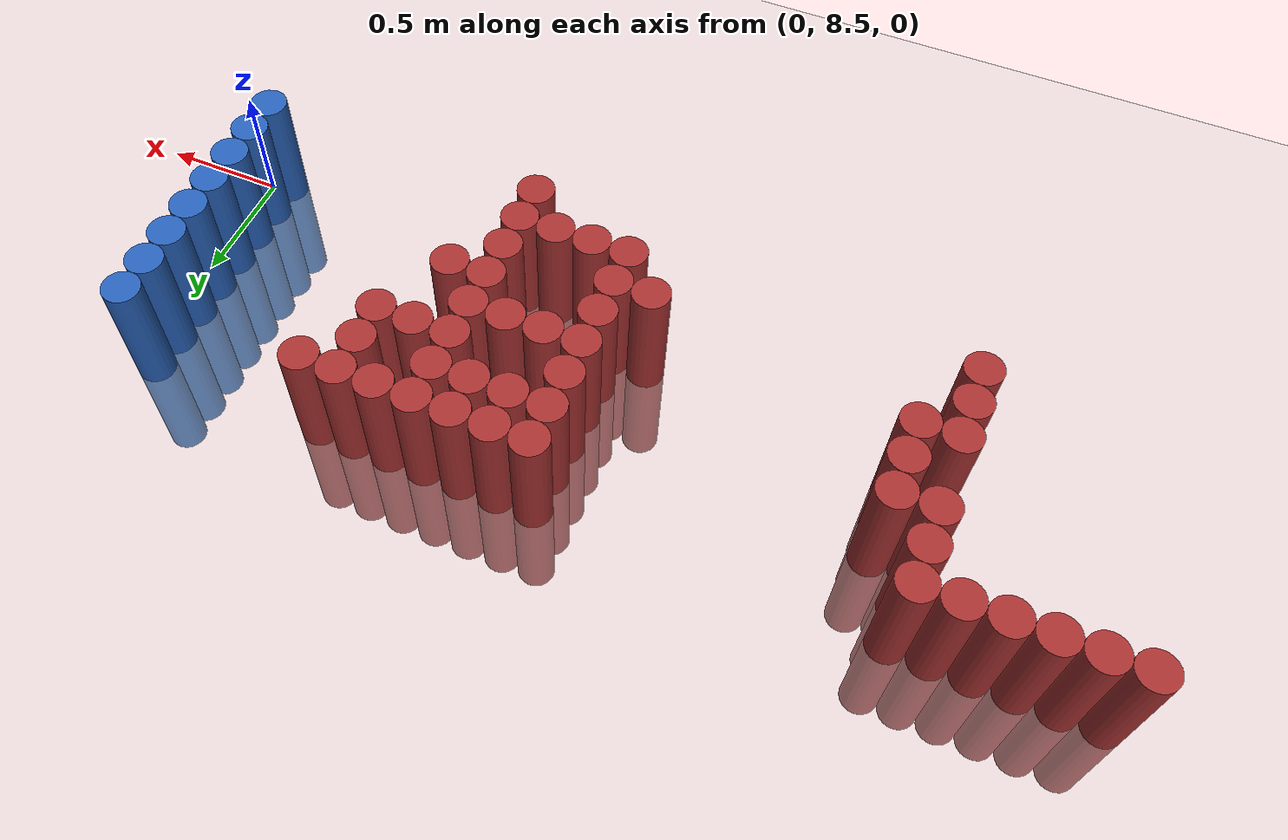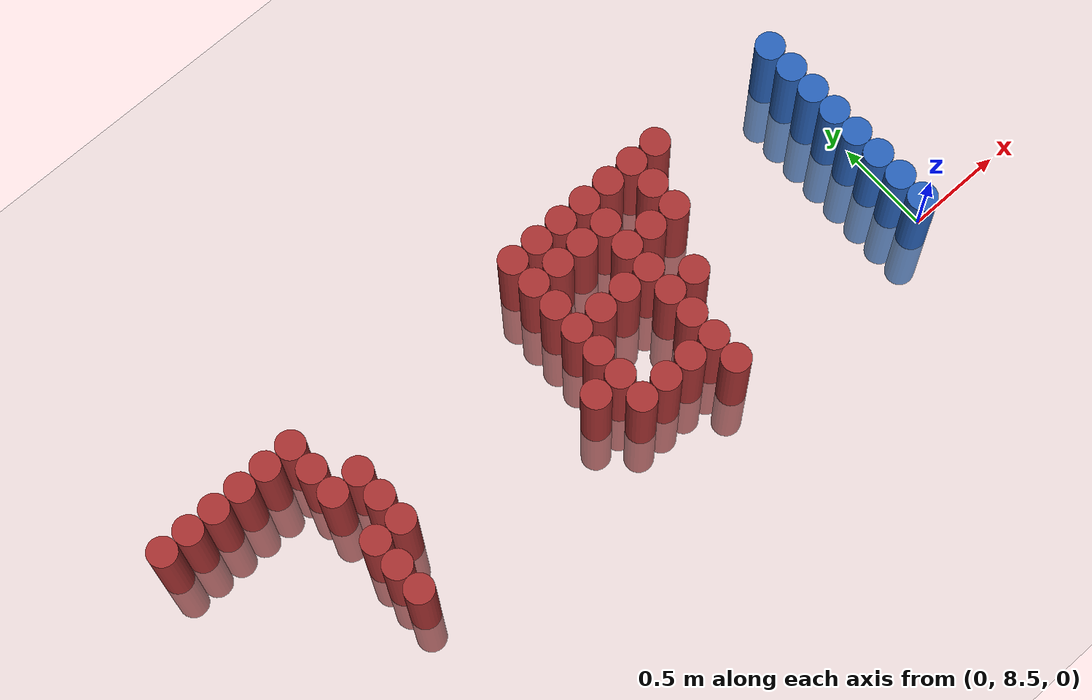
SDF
<sdf version="1.6">
 <world name="default">
  <model name="ground_plane">
   <static>1</static>
   <link name="link">
    <collision name="collision">
     <geometry><plane><normal>0 0 1</normal><size>100 100</size></plane></geometry>
     <surface><friction><ode><mu>100</mu><mu2>50</mu2></ode></friction></surface>
    </collision>
    <visual name="visual">
     <cast_shadows>0</cast_shadows>
     <geometry><plane><normal>0 0 1</normal><size>100 100</size></plane></geometry>
     <material>
      <script><uri>file://media/materials/scripts/gazebo.material</uri><name>Gazebo/Grey</name></script>
     </material>
    </visual>
   </link>
  </model>
  <model name="unit_cylinder_156">
   <static>1</static>
   <pose>-3.825000 9.525000 0.000000 0.000000 0.000000 0.000000</pose>
   <link name="link">
    <inertial>
     <mass>1</mass>
     <inertia><ixx>0.145833</ixx><ixy>0</ixy><ixz>0</ixz><iyy>0.145833</iyy><iyz>0</iyz><izz>0.125</izz></inertia>
    </inertial>
    <collision name="collision">
     <geometry><cylinder><radius>0.075000</radius><length>1</length></cylinder></geometry>
    </collision>
    <visual name="visual">
     <geometry><cylinder><radius>0.075000</radius><length>1</length></cylinder></geometry>
     <material>
      <ambient>0.648000 0.192000 0.192000 1</ambient>
      <diffuse>0.648000 0.192000 0.192000 1</diffuse>
     </material>
     <material>
      <script><name>Gazebo/Grey</name><uri>file://media/materials/scripts/gazebo.material</uri></script>
     </material>
    </visual>
   </link>
  </model>
  <model name="unit_cylinder_162">
   <static>1</static>
   <pose>-3.675000 9.525000 0.000000 0.000000 0.000000 0.000000</pose>
   <link name="link">
    <inertial>
     <mass>1</mass>
     <inertia><ixx>0.145833</ixx><ixy>0</ixy><ixz>0</ixz><iyy>0.145833</iyy><iyz>0</iyz><izz>0.125</izz></inertia>
    </inertial>
    <collision name="collision">
     <geometry><cylinder><radius>0.075000</radius><length>1</length></cylinder></geometry>
    </collision>
    <visual name="visual">
     <geometry><cylinder><radius>0.075000</radius><length>1</length></cylinder></geometry>
     <material>
      <ambient>0.648000 0.192000 0.192000 1</ambient>
      <diffuse>0.648000 0.192000 0.192000 1</diffuse>
     </material>
     <material>
      <script><name>Gazebo/Grey</name><uri>file://media/materials/scripts/gazebo.material</uri></script>
     </material>
    </visual>
   </link>
  </model>
  <model name="unit_cylinder_168">
   <static>1</static>
   <pose>-3.525000 9.525000 0.000000 0.000000 0.000000 0.000000</pose>
   <link name="link">
    <inertial>
     <mass>1</mass>
     <inertia><ixx>0.145833</ixx><ixy>0</ixy><ixz>0</ixz><iyy>0.145833</iyy><iyz>0</iyz><izz>0.125</izz></inertia>
    </inertial>
    <collision name="collision">
     <geometry><cylinder><radius>0.075000</radius><length>1</length></cylinder></geometry>
    </collision>
    <visual name="visual">
     <geometry><cylinder><radius>0.075000</radius><length>1</length></cylinder></geometry>
     <material>
      <ambient>0.648000 0.192000 0.192000 1</ambient>
      <diffuse>0.648000 0.192000 0.192000 1</diffuse>
     </material>
     <material>
      <script><name>Gazebo/Grey</name><uri>file://media/materials/scripts/gazebo.material</uri></script>
     </material>
    </visual>
   </link>
  </model>
  <model name="unit_cylinder_170">
   <static>1</static>
   <pose>-3.375000 9.525000 0.000000 0.000000 0.000000 0.000000</pose>
   <link name="link">
    <inertial>
     <mass>1</mass>
     <inertia><ixx>0.145833</ixx><ixy>0</ixy><ixz>0</ixz><iyy>0.145833</iyy><iyz>0</iyz><izz>0.125</izz></inertia>
    </inertial>
    <collision name="collision">
     <geometry><cylinder><radius>0.075000</radius><length>1</length></cylinder></geometry>
    </collision>
    <visual name="visual">
     <geometry><cylinder><radius>0.075000</radius><length>1</length></cylinder></geometry>
     <material>
      <ambient>0.648000 0.192000 0.192000 1</ambient>
      <diffuse>0.648000 0.192000 0.192000 1</diffuse>
     </material>
     <material>
      <script><name>Gazebo/Grey</name><uri>file://media/materials/scripts/gazebo.material</uri></script>
     </material>
    </visual>
   </link>
  </model>
  <model name="unit_cylinder_173">
   <static>1</static>
   <pose>-3.225000 9.525000 0.000000 0.000000 0.000000 0.000000</pose>
   <link name="link">
    <inertial>
     <mass>1</mass>
     <inertia><ixx>0.145833</ixx><ixy>0</ixy><ixz>0</ixz><iyy>0.145833</iyy><iyz>0</iyz><izz>0.125</izz></inertia>
    </inertial>
    <collision name="collision">
     <geometry><cylinder><radius>0.075000</radius><length>1</length></cylinder></geometry>
    </collision>
    <visual name="visual">
     <geometry><cylinder><radius>0.075000</radius><length>1</length></cylinder></geometry>
     <material>
      <ambient>0.648000 0.192000 0.192000 1</ambient>
      <diffuse>0.648000 0.192000 0.192000 1</diffuse>
     </material>
     <material>
      <script><name>Gazebo/Grey</name><uri>file://media/materials/scripts/gazebo.material</uri></script>
     </material>
    </visual>
   </link>
  </model>
  <model name="unit_cylinder_175">
   <static>1</static>
   <pose>-3.075000 8.625000 0.000000 0.000000 0.000000 0.000000</pose>
   <link name="link">
    <inertial>
     <mass>1</mass>
     <inertia><ixx>0.145833</ixx><ixy>0</ixy><ixz>0</ixz><iyy>0.145833</iyy><iyz>0</iyz><izz>0.125</izz></inertia>
    </inertial>
    <collision name="collision">
     <geometry><cylinder><radius>0.075000</radius><length>1</length></cylinder></geometry>
    </collision>
    <visual name="visual">
     <geometry><cylinder><radius>0.075000</radius><length>1</length></cylinder></geometry>
     <material>
      <ambient>0.648000 0.192000 0.192000 1</ambient>
      <diffuse>0.648000 0.192000 0.192000 1</diffuse>
     </material>
     <material>
      <script><name>Gazebo/Grey</name><uri>file://media/materials/scripts/gazebo.material</uri></script>
     </material>
    </visual>
   </link>
  </model>
  <model name="unit_cylinder_176">
   <static>1</static>
   <pose>-3.075000 8.775000 0.000000 0.000000 0.000000 0.000000</pose>
   <link name="link">
    <inertial>
     <mass>1</mass>
     <inertia><ixx>0.145833</ixx><ixy>0</ixy><ixz>0</ixz><iyy>0.145833</iyy><iyz>0</iyz><izz>0.125</izz></inertia>
    </inertial>
    <collision name="collision">
     <geometry><cylinder><radius>0.075000</radius><length>1</length></cylinder></geometry>
    </collision>
    <visual name="visual">
     <geometry><cylinder><radius>0.075000</radius><length>1</length></cylinder></geometry>
     <material>
      <ambient>0.648000 0.192000 0.192000 1</ambient>
      <diffuse>0.648000 0.192000 0.192000 1</diffuse>
     </material>
     <material>
      <script><name>Gazebo/Grey</name><uri>file://media/materials/scripts/gazebo.material</uri></script>
     </material>
    </visual>
   </link>
  </model>
  <model name="unit_cylinder_177">
   <static>1</static>
   <pose>-3.075000 8.925000 0.000000 0.000000 0.000000 0.000000</pose>
   <link name="link">
    <inertial>
     <mass>1</mass>
     <inertia><ixx>0.145833</ixx><ixy>0</ixy><ixz>0</ixz><iyy>0.145833</iyy><iyz>0</iyz><izz>0.125</izz></inertia>
    </inertial>
    <collision name="collision">
     <geometry><cylinder><radius>0.075000</radius><length>1</length></cylinder></geometry>
    </collision>
    <visual name="visual">
     <geometry><cylinder><radius>0.075000</radius><length>1</length></cylinder></geometry>
     <material>
      <ambient>0.648000 0.192000 0.192000 1</ambient>
      <diffuse>0.648000 0.192000 0.192000 1</diffuse>
     </material>
     <material>
      <script><name>Gazebo/Grey</name><uri>file://media/materials/scripts/gazebo.material</uri></script>
     </material>
    </visual>
   </link>
  </model>
  <model name="unit_cylinder_178">
   <static>1</static>
   <pose>-3.075000 9.225000 0.000000 0.000000 0.000000 0.000000</pose>
   <link name="link">
    <inertial>
     <mass>1</mass>
     <inertia><ixx>0.145833</ixx><ixy>0</ixy><ixz>0</ixz><iyy>0.145833</iyy><iyz>0</iyz><izz>0.125</izz></inertia>
    </inertial>
    <collision name="collision">
     <geometry><cylinder><radius>0.075000</radius><length>1</length></cylinder></geometry>
    </collision>
    <visual name="visual">
     <geometry><cylinder><radius>0.075000</radius><length>1</length></cylinder></geometry>
     <material>
      <ambient>0.648000 0.192000 0.192000 1</ambient>
      <diffuse>0.648000 0.192000 0.192000 1</diffuse>
     </material>
     <material>
      <script><name>Gazebo/Grey</name><uri>file://media/materials/scripts/gazebo.material</uri></script>
     </material>
    </visual>
   </link>
  </model>
  <model name="unit_cylinder_179">
   <static>1</static>
   <pose>-3.075000 9.375000 0.000000 0.000000 0.000000 0.000000</pose>
   <link name="link">
    <inertial>
     <mass>1</mass>
     <inertia><ixx>0.145833</ixx><ixy>0</ixy><ixz>0</ixz><iyy>0.145833</iyy><iyz>0</iyz><izz>0.125</izz></inertia>
    </inertial>
    <collision name="collision">
     <geometry><cylinder><radius>0.075000</radius><length>1</length></cylinder></geometry>
    </collision>
    <visual name="visual">
     <geometry><cylinder><radius>0.075000</radius><length>1</length></cylinder></geometry>
     <material>
      <ambient>0.648000 0.192000 0.192000 1</ambient>
      <diffuse>0.648000 0.192000 0.192000 1</diffuse>
     </material>
     <material>
      <script><name>Gazebo/Grey</name><uri>file://media/materials/scripts/gazebo.material</uri></script>
     </material>
    </visual>
   </link>
  </model>
  <model name="unit_cylinder_180">
   <static>1</static>
   <pose>-3.075000 9.525000 0.000000 0.000000 0.000000 0.000000</pose>
   <link name="link">
    <inertial>
     <mass>1</mass>
     <inertia><ixx>0.145833</ixx><ixy>0</ixy><ixz>0</ixz><iyy>0.145833</iyy><iyz>0</iyz><izz>0.125</izz></inertia>
    </inertial>
    <collision name="collision">
     <geometry><cylinder><radius>0.075000</radius><length>1</length></cylinder></geometry>
    </collision>
    <visual name="visual">
     <geometry><cylinder><radius>0.075000</radius><length>1</length></cylinder></geometry>
     <material>
      <ambient>0.648000 0.192000 0.192000 1</ambient>
      <diffuse>0.648000 0.192000 0.192000 1</diffuse>
     </material>
     <material>
      <script><name>Gazebo/Grey</name><uri>file://media/materials/scripts/gazebo.material</uri></script>
     </material>
    </visual>
   </link>
  </model>
  <model name="unit_cylinder_181">
   <static>1</static>
   <pose>-2.925000 8.925000 0.000000 0.000000 0.000000 0.000000</pose>
   <link name="link">
    <inertial>
     <mass>1</mass>
     <inertia><ixx>0.145833</ixx><ixy>0</ixy><ixz>0</ixz><iyy>0.145833</iyy><iyz>0</iyz><izz>0.125</izz></inertia>
    </inertial>
    <collision name="collision">
     <geometry><cylinder><radius>0.075000</radius><length>1</length></cylinder></geometry>
    </collision>
    <visual name="visual">
     <geometry><cylinder><radius>0.075000</radius><length>1</length></cylinder></geometry>
     <material>
      <ambient>0.648000 0.192000 0.192000 1</ambient>
      <diffuse>0.648000 0.192000 0.192000 1</diffuse>
     </material>
     <material>
      <script><name>Gazebo/Grey</name><uri>file://media/materials/scripts/gazebo.material</uri></script>
     </material>
    </visual>
   </link>
  </model>
  <model name="unit_cylinder_182">
   <static>1</static>
   <pose>-2.925000 9.075000 0.000000 0.000000 0.000000 0.000000</pose>
   <link name="link">
    <inertial>
     <mass>1</mass>
     <inertia><ixx>0.145833</ixx><ixy>0</ixy><ixz>0</ixz><iyy>0.145833</iyy><iyz>0</iyz><izz>0.125</izz></inertia>
    </inertial>
    <collision name="collision">
     <geometry><cylinder><radius>0.075000</radius><length>1</length></cylinder></geometry>
    </collision>
    <visual name="visual">
     <geometry><cylinder><radius>0.075000</radius><length>1</length></cylinder></geometry>
     <material>
      <ambient>0.648000 0.192000 0.192000 1</ambient>
      <diffuse>0.648000 0.192000 0.192000 1</diffuse>
     </material>
     <material>
      <script><name>Gazebo/Grey</name><uri>file://media/materials/scripts/gazebo.material</uri></script>
     </material>
    </visual>
   </link>
  </model>
  <model name="unit_cylinder_183">
   <static>1</static>
   <pose>-2.925000 9.225000 0.000000 0.000000 0.000000 0.000000</pose>
   <link name="link">
    <inertial>
     <mass>1</mass>
     <inertia><ixx>0.145833</ixx><ixy>0</ixy><ixz>0</ixz><iyy>0.145833</iyy><iyz>0</iyz><izz>0.125</izz></inertia>
    </inertial>
    <collision name="collision">
     <geometry><cylinder><radius>0.075000</radius><length>1</length></cylinder></geometry>
    </collision>
    <visual name="visual">
     <geometry><cylinder><radius>0.075000</radius><length>1</length></cylinder></geometry>
     <material>
      <ambient>0.648000 0.192000 0.192000 1</ambient>
      <diffuse>0.648000 0.192000 0.192000 1</diffuse>
     </material>
     <material>
      <script><name>Gazebo/Grey</name><uri>file://media/materials/scripts/gazebo.material</uri></script>
     </material>
    </visual>
   </link>
  </model>
  <model name="unit_cylinder_184">
   <static>1</static>
   <pose>-1.875000 8.775000 0.000000 0.000000 0.000000 0.000000</pose>
   <link name="link">
    <inertial>
     <mass>1</mass>
     <inertia><ixx>0.145833</ixx><ixy>0</ixy><ixz>0</ixz><iyy>0.145833</iyy><iyz>0</iyz><izz>0.125</izz></inertia>
    </inertial>
    <collision name="collision">
     <geometry><cylinder><radius>0.075000</radius><length>1</length></cylinder></geometry>
    </collision>
    <visual name="visual">
     <geometry><cylinder><radius>0.075000</radius><length>1</length></cylinder></geometry>
     <material>
      <ambient>0.648000 0.192000 0.192000 1</ambient>
      <diffuse>0.648000 0.192000 0.192000 1</diffuse>
     </material>
     <material>
      <script><name>Gazebo/Grey</name><uri>file://media/materials/scripts/gazebo.material</uri></script>
     </material>
    </visual>
   </link>
  </model>
  <model name="unit_cylinder_185">
   <static>1</static>
   <pose>-1.725000 8.625000 0.000000 0.000000 0.000000 0.000000</pose>
   <link name="link">
    <inertial>
     <mass>1</mass>
     <inertia><ixx>0.145833</ixx><ixy>0</ixy><ixz>0</ixz><iyy>0.145833</iyy><iyz>0</iyz><izz>0.125</izz></inertia>
    </inertial>
    <collision name="collision">
     <geometry><cylinder><radius>0.075000</radius><length>1</length></cylinder></geometry>
    </collision>
    <visual name="visual">
     <geometry><cylinder><radius>0.075000</radius><length>1</length></cylinder></geometry>
     <material>
      <ambient>0.648000 0.192000 0.192000 1</ambient>
      <diffuse>0.648000 0.192000 0.192000 1</diffuse>
     </material>
     <material>
      <script><name>Gazebo/Grey</name><uri>file://media/materials/scripts/gazebo.material</uri></script>
     </material>
    </visual>
   </link>
  </model>
  <model name="unit_cylinder_186">
   <static>1</static>
   <pose>-1.725000 8.775000 0.000000 0.000000 0.000000 0.000000</pose>
   <link name="link">
    <inertial>
     <mass>1</mass>
     <inertia><ixx>0.145833</ixx><ixy>0</ixy><ixz>0</ixz><iyy>0.145833</iyy><iyz>0</iyz><izz>0.125</izz></inertia>
    </inertial>
    <collision name="collision">
     <geometry><cylinder><radius>0.075000</radius><length>1</length></cylinder></geometry>
    </collision>
    <visual name="visual">
     <geometry><cylinder><radius>0.075000</radius><length>1</length></cylinder></geometry>
     <material>
      <ambient>0.648000 0.192000 0.192000 1</ambient>
      <diffuse>0.648000 0.192000 0.192000 1</diffuse>
     </material>
     <material>
      <script><name>Gazebo/Grey</name><uri>file://media/materials/scripts/gazebo.material</uri></script>
     </material>
    </visual>
   </link>
  </model>
  <model name="unit_cylinder_187">
   <static>1</static>
   <pose>-1.725000 8.925000 0.000000 0.000000 0.000000 0.000000</pose>
   <link name="link">
    <inertial>
     <mass>1</mass>
     <inertia><ixx>0.145833</ixx><ixy>0</ixy><ixz>0</ixz><iyy>0.145833</iyy><iyz>0</iyz><izz>0.125</izz></inertia>
    </inertial>
    <collision name="collision">
     <geometry><cylinder><radius>0.075000</radius><length>1</length></cylinder></geometry>
    </collision>
    <visual name="visual">
     <geometry><cylinder><radius>0.075000</radius><length>1</length></cylinder></geometry>
     <material>
      <ambient>0.648000 0.192000 0.192000 1</ambient>
      <diffuse>0.648000 0.192000 0.192000 1</diffuse>
     </material>
     <material>
      <script><name>Gazebo/Grey</name><uri>file://media/materials/scripts/gazebo.material</uri></script>
     </material>
    </visual>
   </link>
  </model>
  <model name="unit_cylinder_188">
   <static>1</static>
   <pose>-1.725000 9.075000 0.000000 0.000000 0.000000 0.000000</pose>
   <link name="link">
    <inertial>
     <mass>1</mass>
     <inertia><ixx>0.145833</ixx><ixy>0</ixy><ixz>0</ixz><iyy>0.145833</iyy><iyz>0</iyz><izz>0.125</izz></inertia>
    </inertial>
    <collision name="collision">
     <geometry><cylinder><radius>0.075000</radius><length>1</length></cylinder></geometry>
    </collision>
    <visual name="visual">
     <geometry><cylinder><radius>0.075000</radius><length>1</length></cylinder></geometry>
     <material>
      <ambient>0.648000 0.192000 0.192000 1</ambient>
      <diffuse>0.648000 0.192000 0.192000 1</diffuse>
     </material>
     <material>
      <script><name>Gazebo/Grey</name><uri>file://media/materials/scripts/gazebo.material</uri></script>
     </material>
    </visual>
   </link>
  </model>
  <model name="unit_cylinder_189">
   <static>1</static>
   <pose>-1.725000 9.225000 0.000000 0.000000 0.000000 0.000000</pose>
   <link name="link">
    <inertial>
     <mass>1</mass>
     <inertia><ixx>0.145833</ixx><ixy>0</ixy><ixz>0</ixz><iyy>0.145833</iyy><iyz>0</iyz><izz>0.125</izz></inertia>
    </inertial>
    <collision name="collision">
     <geometry><cylinder><radius>0.075000</radius><length>1</length></cylinder></geometry>
    </collision>
    <visual name="visual">
     <geometry><cylinder><radius>0.075000</radius><length>1</length></cylinder></geometry>
     <material>
      <ambient>0.648000 0.192000 0.192000 1</ambient>
      <diffuse>0.648000 0.192000 0.192000 1</diffuse>
     </material>
     <material>
      <script><name>Gazebo/Grey</name><uri>file://media/materials/scripts/gazebo.material</uri></script>
     </material>
    </visual>
   </link>
  </model>
  <model name="unit_cylinder_190">
   <static>1</static>
   <pose>-1.725000 9.375000 0.000000 0.000000 0.000000 0.000000</pose>
   <link name="link">
    <inertial>
     <mass>1</mass>
     <inertia><ixx>0.145833</ixx><ixy>0</ixy><ixz>0</ixz><iyy>0.145833</iyy><iyz>0</iyz><izz>0.125</izz></inertia>
    </inertial>
    <collision name="collision">
     <geometry><cylinder><radius>0.075000</radius><length>1</length></cylinder></geometry>
    </collision>
    <visual name="visual">
     <geometry><cylinder><radius>0.075000</radius><length>1</length></cylinder></geometry>
     <material>
      <ambient>0.648000 0.192000 0.192000 1</ambient>
      <diffuse>0.648000 0.192000 0.192000 1</diffuse>
     </material>
     <material>
      <script><name>Gazebo/Grey</name><uri>file://media/materials/scripts/gazebo.material</uri></script>
     </material>
    </visual>
   </link>
  </model>
  <model name="unit_cylinder_191">
   <static>1</static>
   <pose>-1.725000 9.525000 0.000000 0.000000 0.000000 0.000000</pose>
   <link name="link">
    <inertial>
     <mass>1</mass>
     <inertia><ixx>0.145833</ixx><ixy>0</ixy><ixz>0</ixz><iyy>0.145833</iyy><iyz>0</iyz><izz>0.125</izz></inertia>
    </inertial>
    <collision name="collision">
     <geometry><cylinder><radius>0.075000</radius><length>1</length></cylinder></geometry>
    </collision>
    <visual name="visual">
     <geometry><cylinder><radius>0.075000</radius><length>1</length></cylinder></geometry>
     <material>
      <ambient>0.648000 0.192000 0.192000 1</ambient>
      <diffuse>0.648000 0.192000 0.192000 1</diffuse>
     </material>
     <material>
      <script><name>Gazebo/Grey</name><uri>file://media/materials/scripts/gazebo.material</uri></script>
     </material>
    </visual>
   </link>
  </model>
  <model name="unit_cylinder_192">
   <static>1</static>
   <pose>-1.575000 8.625000 0.000000 0.000000 0.000000 0.000000</pose>
   <link name="link">
    <inertial>
     <mass>1</mass>
     <inertia><ixx>0.145833</ixx><ixy>0</ixy><ixz>0</ixz><iyy>0.145833</iyy><iyz>0</iyz><izz>0.125</izz></inertia>
    </inertial>
    <collision name="collision">
     <geometry><cylinder><radius>0.075000</radius><length>1</length></cylinder></geometry>
    </collision>
    <visual name="visual">
     <geometry><cylinder><radius>0.075000</radius><length>1</length></cylinder></geometry>
     <material>
      <ambient>0.648000 0.192000 0.192000 1</ambient>
      <diffuse>0.648000 0.192000 0.192000 1</diffuse>
     </material>
     <material>
      <script><name>Gazebo/Grey</name><uri>file://media/materials/scripts/gazebo.material</uri></script>
     </material>
    </visual>
   </link>
  </model>
  <model name="unit_cylinder_193">
   <static>1</static>
   <pose>-1.575000 9.075000 0.000000 0.000000 0.000000 0.000000</pose>
   <link name="link">
    <inertial>
     <mass>1</mass>
     <inertia><ixx>0.145833</ixx><ixy>0</ixy><ixz>0</ixz><iyy>0.145833</iyy><iyz>0</iyz><izz>0.125</izz></inertia>
    </inertial>
    <collision name="collision">
     <geometry><cylinder><radius>0.075000</radius><length>1</length></cylinder></geometry>
    </collision>
    <visual name="visual">
     <geometry><cylinder><radius>0.075000</radius><length>1</length></cylinder></geometry>
     <material>
      <ambient>0.648000 0.192000 0.192000 1</ambient>
      <diffuse>0.648000 0.192000 0.192000 1</diffuse>
     </material>
     <material>
      <script><name>Gazebo/Grey</name><uri>file://media/materials/scripts/gazebo.material</uri></script>
     </material>
    </visual>
   </link>
  </model>
  <model name="unit_cylinder_194">
   <static>1</static>
   <pose>-1.575000 9.375000 0.000000 0.000000 0.000000 0.000000</pose>
   <link name="link">
    <inertial>
     <mass>1</mass>
     <inertia><ixx>0.145833</ixx><ixy>0</ixy><ixz>0</ixz><iyy>0.145833</iyy><iyz>0</iyz><izz>0.125</izz></inertia>
    </inertial>
    <collision name="collision">
     <geometry><cylinder><radius>0.075000</radius><length>1</length></cylinder></geometry>
    </collision>
    <visual name="visual">
     <geometry><cylinder><radius>0.075000</radius><length>1</length></cylinder></geometry>
     <material>
      <ambient>0.648000 0.192000 0.192000 1</ambient>
      <diffuse>0.648000 0.192000 0.192000 1</diffuse>
     </material>
     <material>
      <script><name>Gazebo/Grey</name><uri>file://media/materials/scripts/gazebo.material</uri></script>
     </material>
    </visual>
   </link>
  </model>
  <model name="unit_cylinder_195">
   <static>1</static>
   <pose>-1.575000 9.525000 0.000000 0.000000 0.000000 0.000000</pose>
   <link name="link">
    <inertial>
     <mass>1</mass>
     <inertia><ixx>0.145833</ixx><ixy>0</ixy><ixz>0</ixz><iyy>0.145833</iyy><iyz>0</iyz><izz>0.125</izz></inertia>
    </inertial>
    <collision name="collision">
     <geometry><cylinder><radius>0.075000</radius><length>1</length></cylinder></geometry>
    </collision>
    <visual name="visual">
     <geometry><cylinder><radius>0.075000</radius><length>1</length></cylinder></geometry>
     <material>
      <ambient>0.648000 0.192000 0.192000 1</ambient>
      <diffuse>0.648000 0.192000 0.192000 1</diffuse>
     </material>
     <material>
      <script><name>Gazebo/Grey</name><uri>file://media/materials/scripts/gazebo.material</uri></script>
     </material>
    </visual>
   </link>
  </model>
  <model name="unit_cylinder_196">
   <static>1</static>
   <pose>-1.425000 8.625000 0.000000 0.000000 0.000000 0.000000</pose>
   <link name="link">
    <inertial>
     <mass>1</mass>
     <inertia><ixx>0.145833</ixx><ixy>0</ixy><ixz>0</ixz><iyy>0.145833</iyy><iyz>0</iyz><izz>0.125</izz></inertia>
    </inertial>
    <collision name="collision">
     <geometry><cylinder><radius>0.075000</radius><length>1</length></cylinder></geometry>
    </collision>
    <visual name="visual">
     <geometry><cylinder><radius>0.075000</radius><length>1</length></cylinder></geometry>
     <material>
      <ambient>0.648000 0.192000 0.192000 1</ambient>
      <diffuse>0.648000 0.192000 0.192000 1</diffuse>
     </material>
     <material>
      <script><name>Gazebo/Grey</name><uri>file://media/materials/scripts/gazebo.material</uri></script>
     </material>
    </visual>
   </link>
  </model>
  <model name="unit_cylinder_197">
   <static>1</static>
   <pose>-1.425000 9.075000 0.000000 0.000000 0.000000 0.000000</pose>
   <link name="link">
    <inertial>
     <mass>1</mass>
     <inertia><ixx>0.145833</ixx><ixy>0</ixy><ixz>0</ixz><iyy>0.145833</iyy><iyz>0</iyz><izz>0.125</izz></inertia>
    </inertial>
    <collision name="collision">
     <geometry><cylinder><radius>0.075000</radius><length>1</length></cylinder></geometry>
    </collision>
    <visual name="visual">
     <geometry><cylinder><radius>0.075000</radius><length>1</length></cylinder></geometry>
     <material>
      <ambient>0.648000 0.192000 0.192000 1</ambient>
      <diffuse>0.648000 0.192000 0.192000 1</diffuse>
     </material>
     <material>
      <script><name>Gazebo/Grey</name><uri>file://media/materials/scripts/gazebo.material</uri></script>
     </material>
    </visual>
   </link>
  </model>
  <model name="unit_cylinder_198">
   <static>1</static>
   <pose>-1.425000 9.375000 0.000000 0.000000 0.000000 0.000000</pose>
   <link name="link">
    <inertial>
     <mass>1</mass>
     <inertia><ixx>0.145833</ixx><ixy>0</ixy><ixz>0</ixz><iyy>0.145833</iyy><iyz>0</iyz><izz>0.125</izz></inertia>
    </inertial>
    <collision name="collision">
     <geometry><cylinder><radius>0.075000</radius><length>1</length></cylinder></geometry>
    </collision>
    <visual name="visual">
     <geometry><cylinder><radius>0.075000</radius><length>1</length></cylinder></geometry>
     <material>
      <ambient>0.648000 0.192000 0.192000 1</ambient>
      <diffuse>0.648000 0.192000 0.192000 1</diffuse>
     </material>
     <material>
      <script><name>Gazebo/Grey</name><uri>file://media/materials/scripts/gazebo.material</uri></script>
     </material>
    </visual>
   </link>
  </model>
  <model name="unit_cylinder_199">
   <static>1</static>
   <pose>-1.425000 9.525000 0.000000 0.000000 0.000000 0.000000</pose>
   <link name="link">
    <inertial>
     <mass>1</mass>
     <inertia><ixx>0.145833</ixx><ixy>0</ixy><ixz>0</ixz><iyy>0.145833</iyy><iyz>0</iyz><izz>0.125</izz></inertia>
    </inertial>
    <collision name="collision">
     <geometry><cylinder><radius>0.075000</radius><length>1</length></cylinder></geometry>
    </collision>
    <visual name="visual">
     <geometry><cylinder><radius>0.075000</radius><length>1</length></cylinder></geometry>
     <material>
      <ambient>0.648000 0.192000 0.192000 1</ambient>
      <diffuse>0.648000 0.192000 0.192000 1</diffuse>
     </material>
     <material>
      <script><name>Gazebo/Grey</name><uri>file://media/materials/scripts/gazebo.material</uri></script>
     </material>
    </visual>
   </link>
  </model>
  <model name="unit_cylinder_200">
   <static>1</static>
   <pose>-1.275000 8.475000 0.000000 0.000000 0.000000 0.000000</pose>
   <link name="link">
    <inertial>
     <mass>1</mass>
     <inertia><ixx>0.145833</ixx><ixy>0</ixy><ixz>0</ixz><iyy>0.145833</iyy><iyz>0</iyz><izz>0.125</izz></inertia>
    </inertial>
    <collision name="collision">
     <geometry><cylinder><radius>0.075000</radius><length>1</length></cylinder></geometry>
    </collision>
    <visual name="visual">
     <geometry><cylinder><radius>0.075000</radius><length>1</length></cylinder></geometry>
     <material>
      <ambient>0.648000 0.192000 0.192000 1</ambient>
      <diffuse>0.648000 0.192000 0.192000 1</diffuse>
     </material>
     <material>
      <script><name>Gazebo/Grey</name><uri>file://media/materials/scripts/gazebo.material</uri></script>
     </material>
    </visual>
   </link>
  </model>
  <model name="unit_cylinder_201">
   <static>1</static>
   <pose>-1.275000 8.625000 0.000000 0.000000 0.000000 0.000000</pose>
   <link name="link">
    <inertial>
     <mass>1</mass>
     <inertia><ixx>0.145833</ixx><ixy>0</ixy><ixz>0</ixz><iyy>0.145833</iyy><iyz>0</iyz><izz>0.125</izz></inertia>
    </inertial>
    <collision name="collision">
     <geometry><cylinder><radius>0.075000</radius><length>1</length></cylinder></geometry>
    </collision>
    <visual name="visual">
     <geometry><cylinder><radius>0.075000</radius><length>1</length></cylinder></geometry>
     <material>
      <ambient>0.648000 0.192000 0.192000 1</ambient>
      <diffuse>0.648000 0.192000 0.192000 1</diffuse>
     </material>
     <material>
      <script><name>Gazebo/Grey</name><uri>file://media/materials/scripts/gazebo.material</uri></script>
     </material>
    </visual>
   </link>
  </model>
  <model name="unit_cylinder_202">
   <static>1</static>
   <pose>-1.275000 8.775000 0.000000 0.000000 0.000000 0.000000</pose>
   <link name="link">
    <inertial>
     <mass>1</mass>
     <inertia><ixx>0.145833</ixx><ixy>0</ixy><ixz>0</ixz><iyy>0.145833</iyy><iyz>0</iyz><izz>0.125</izz></inertia>
    </inertial>
    <collision name="collision">
     <geometry><cylinder><radius>0.075000</radius><length>1</length></cylinder></geometry>
    </collision>
    <visual name="visual">
     <geometry><cylinder><radius>0.075000</radius><length>1</length></cylinder></geometry>
     <material>
      <ambient>0.648000 0.192000 0.192000 1</ambient>
      <diffuse>0.648000 0.192000 0.192000 1</diffuse>
     </material>
     <material>
      <script><name>Gazebo/Grey</name><uri>file://media/materials/scripts/gazebo.material</uri></script>
     </material>
    </visual>
   </link>
  </model>
  <model name="unit_cylinder_203">
   <static>1</static>
   <pose>-1.275000 8.925000 0.000000 0.000000 0.000000 0.000000</pose>
   <link name="link">
    <inertial>
     <mass>1</mass>
     <inertia><ixx>0.145833</ixx><ixy>0</ixy><ixz>0</ixz><iyy>0.145833</iyy><iyz>0</iyz><izz>0.125</izz></inertia>
    </inertial>
    <collision name="collision">
     <geometry><cylinder><radius>0.075000</radius><length>1</length></cylinder></geometry>
    </collision>
    <visual name="visual">
     <geometry><cylinder><radius>0.075000</radius><length>1</length></cylinder></geometry>
     <material>
      <ambient>0.648000 0.192000 0.192000 1</ambient>
      <diffuse>0.648000 0.192000 0.192000 1</diffuse>
     </material>
     <material>
      <script><name>Gazebo/Grey</name><uri>file://media/materials/scripts/gazebo.material</uri></script>
     </material>
    </visual>
   </link>
  </model>
  <model name="unit_cylinder_204">
   <static>1</static>
   <pose>-1.275000 9.075000 0.000000 0.000000 0.000000 0.000000</pose>
   <link name="link">
    <inertial>
     <mass>1</mass>
     <inertia><ixx>0.145833</ixx><ixy>0</ixy><ixz>0</ixz><iyy>0.145833</iyy><iyz>0</iyz><izz>0.125</izz></inertia>
    </inertial>
    <collision name="collision">
     <geometry><cylinder><radius>0.075000</radius><length>1</length></cylinder></geometry>
    </collision>
    <visual name="visual">
     <geometry><cylinder><radius>0.075000</radius><length>1</length></cylinder></geometry>
     <material>
      <ambient>0.648000 0.192000 0.192000 1</ambient>
      <diffuse>0.648000 0.192000 0.192000 1</diffuse>
     </material>
     <material>
      <script><name>Gazebo/Grey</name><uri>file://media/materials/scripts/gazebo.material</uri></script>
     </material>
    </visual>
   </link>
  </model>
  <model name="unit_cylinder_205">
   <static>1</static>
   <pose>-1.275000 9.225000 0.000000 0.000000 0.000000 0.000000</pose>
   <link name="link">
    <inertial>
     <mass>1</mass>
     <inertia><ixx>0.145833</ixx><ixy>0</ixy><ixz>0</ixz><iyy>0.145833</iyy><iyz>0</iyz><izz>0.125</izz></inertia>
    </inertial>
    <collision name="collision">
     <geometry><cylinder><radius>0.075000</radius><length>1</length></cylinder></geometry>
    </collision>
    <visual name="visual">
     <geometry><cylinder><radius>0.075000</radius><length>1</length></cylinder></geometry>
     <material>
      <ambient>0.648000 0.192000 0.192000 1</ambient>
      <diffuse>0.648000 0.192000 0.192000 1</diffuse>
     </material>
     <material>
      <script><name>Gazebo/Grey</name><uri>file://media/materials/scripts/gazebo.material</uri></script>
     </material>
    </visual>
   </link>
  </model>
  <model name="unit_cylinder_206">
   <static>1</static>
   <pose>-1.275000 9.375000 0.000000 0.000000 0.000000 0.000000</pose>
   <link name="link">
    <inertial>
     <mass>1</mass>
     <inertia><ixx>0.145833</ixx><ixy>0</ixy><ixz>0</ixz><iyy>0.145833</iyy><iyz>0</iyz><izz>0.125</izz></inertia>
    </inertial>
    <collision name="collision">
     <geometry><cylinder><radius>0.075000</radius><length>1</length></cylinder></geometry>
    </collision>
    <visual name="visual">
     <geometry><cylinder><radius>0.075000</radius><length>1</length></cylinder></geometry>
     <material>
      <ambient>0.648000 0.192000 0.192000 1</ambient>
      <diffuse>0.648000 0.192000 0.192000 1</diffuse>
     </material>
     <material>
      <script><name>Gazebo/Grey</name><uri>file://media/materials/scripts/gazebo.material</uri></script>
     </material>
    </visual>
   </link>
  </model>
  <model name="unit_cylinder_207">
   <static>1</static>
   <pose>-1.275000 9.525000 0.000000 0.000000 0.000000 0.000000</pose>
   <link name="link">
    <inertial>
     <mass>1</mass>
     <inertia><ixx>0.145833</ixx><ixy>0</ixy><ixz>0</ixz><iyy>0.145833</iyy><iyz>0</iyz><izz>0.125</izz></inertia>
    </inertial>
    <collision name="collision">
     <geometry><cylinder><radius>0.075000</radius><length>1</length></cylinder></geometry>
    </collision>
    <visual name="visual">
     <geometry><cylinder><radius>0.075000</radius><length>1</length></cylinder></geometry>
     <material>
      <ambient>0.648000 0.192000 0.192000 1</ambient>
      <diffuse>0.648000 0.192000 0.192000 1</diffuse>
     </material>
     <material>
      <script><name>Gazebo/Grey</name><uri>file://media/materials/scripts/gazebo.material</uri></script>
     </material>
    </visual>
   </link>
  </model>
  <model name="unit_cylinder_208">
   <static>1</static>
   <pose>-1.125000 8.925000 0.000000 0.000000 0.000000 0.000000</pose>
   <link name="link">
    <inertial>
     <mass>1</mass>
     <inertia><ixx>0.145833</ixx><ixy>0</ixy><ixz>0</ixz><iyy>0.145833</iyy><iyz>0</iyz><izz>0.125</izz></inertia>
    </inertial>
    <collision name="collision">
     <geometry><cylinder><radius>0.075000</radius><length>1</length></cylinder></geometry>
    </collision>
    <visual name="visual">
     <geometry><cylinder><radius>0.075000</radius><length>1</length></cylinder></geometry>
     <material>
      <ambient>0.648000 0.192000 0.192000 1</ambient>
      <diffuse>0.648000 0.192000 0.192000 1</diffuse>
     </material>
     <material>
      <script><name>Gazebo/Grey</name><uri>file://media/materials/scripts/gazebo.material</uri></script>
     </material>
    </visual>
   </link>
  </model>
  <model name="unit_cylinder_209">
   <static>1</static>
   <pose>-1.125000 9.225000 0.000000 0.000000 0.000000 0.000000</pose>
   <link name="link">
    <inertial>
     <mass>1</mass>
     <inertia><ixx>0.145833</ixx><ixy>0</ixy><ixz>0</ixz><iyy>0.145833</iyy><iyz>0</iyz><izz>0.125</izz></inertia>
    </inertial>
    <collision name="collision">
     <geometry><cylinder><radius>0.075000</radius><length>1</length></cylinder></geometry>
    </collision>
    <visual name="visual">
     <geometry><cylinder><radius>0.075000</radius><length>1</length></cylinder></geometry>
     <material>
      <ambient>0.648000 0.192000 0.192000 1</ambient>
      <diffuse>0.648000 0.192000 0.192000 1</diffuse>
     </material>
     <material>
      <script><name>Gazebo/Grey</name><uri>file://media/materials/scripts/gazebo.material</uri></script>
     </material>
    </visual>
   </link>
  </model>
  <model name="unit_cylinder_210">
   <static>1</static>
   <pose>-1.125000 9.525000 0.000000 0.000000 0.000000 0.000000</pose>
   <link name="link">
    <inertial>
     <mass>1</mass>
     <inertia><ixx>0.145833</ixx><ixy>0</ixy><ixz>0</ixz><iyy>0.145833</iyy><iyz>0</iyz><izz>0.125</izz></inertia>
    </inertial>
    <collision name="collision">
     <geometry><cylinder><radius>0.075000</radius><length>1</length></cylinder></geometry>
    </collision>
    <visual name="visual">
     <geometry><cylinder><radius>0.075000</radius><length>1</length></cylinder></geometry>
     <material>
      <ambient>0.648000 0.192000 0.192000 1</ambient>
      <diffuse>0.648000 0.192000 0.192000 1</diffuse>
     </material>
     <material>
      <script><name>Gazebo/Grey</name><uri>file://media/materials/scripts/gazebo.material</uri></script>
     </material>
    </visual>
   </link>
  </model>
  <model name="unit_cylinder_211">
   <static>1</static>
   <pose>-0.975000 9.225000 0.000000 0.000000 0.000000 0.000000</pose>
   <link name="link">
    <inertial>
     <mass>1</mass>
     <inertia><ixx>0.145833</ixx><ixy>0</ixy><ixz>0</ixz><iyy>0.145833</iyy><iyz>0</iyz><izz>0.125</izz></inertia>
    </inertial>
    <collision name="collision">
     <geometry><cylinder><radius>0.075000</radius><length>1</length></cylinder></geometry>
    </collision>
    <visual name="visual">
     <geometry><cylinder><radius>0.075000</radius><length>1</length></cylinder></geometry>
     <material>
      <ambient>0.648000 0.192000 0.192000 1</ambient>
      <diffuse>0.648000 0.192000 0.192000 1</diffuse>
     </material>
     <material>
      <script><name>Gazebo/Grey</name><uri>file://media/materials/scripts/gazebo.material</uri></script>
     </material>
    </visual>
   </link>
  </model>
  <model name="unit_cylinder_212">
   <static>1</static>
   <pose>-0.975000 9.375000 0.000000 0.000000 0.000000 0.000000</pose>
   <link name="link">
    <inertial>
     <mass>1</mass>
     <inertia><ixx>0.145833</ixx><ixy>0</ixy><ixz>0</ixz><iyy>0.145833</iyy><iyz>0</iyz><izz>0.125</izz></inertia>
    </inertial>
    <collision name="collision">
     <geometry><cylinder><radius>0.075000</radius><length>1</length></cylinder></geometry>
    </collision>
    <visual name="visual">
     <geometry><cylinder><radius>0.075000</radius><length>1</length></cylinder></geometry>
     <material>
      <ambient>0.648000 0.192000 0.192000 1</ambient>
      <diffuse>0.648000 0.192000 0.192000 1</diffuse>
     </material>
     <material>
      <script><name>Gazebo/Grey</name><uri>file://media/materials/scripts/gazebo.material</uri></script>
     </material>
    </visual>
   </link>
  </model>
  <model name="unit_cylinder_213">
   <static>1</static>
   <pose>-0.975000 9.525000 0.000000 0.000000 0.000000 0.000000</pose>
   <link name="link">
    <inertial>
     <mass>1</mass>
     <inertia><ixx>0.145833</ixx><ixy>0</ixy><ixz>0</ixz><iyy>0.145833</iyy><iyz>0</iyz><izz>0.125</izz></inertia>
    </inertial>
    <collision name="collision">
     <geometry><cylinder><radius>0.075000</radius><length>1</length></cylinder></geometry>
    </collision>
    <visual name="visual">
     <geometry><cylinder><radius>0.075000</radius><length>1</length></cylinder></geometry>
     <material>
      <ambient>0.648000 0.192000 0.192000 1</ambient>
      <diffuse>0.648000 0.192000 0.192000 1</diffuse>
     </material>
     <material>
      <script><name>Gazebo/Grey</name><uri>file://media/materials/scripts/gazebo.material</uri></script>
     </material>
    </visual>
   </link>
  </model>
  <model name="unit_cylinder_217">
   <static>1</static>
   <pose>-0.825000 9.525000 0.000000 0.000000 0.000000 0.000000</pose>
   <link name="link">
    <inertial>
     <mass>1</mass>
     <inertia><ixx>0.145833</ixx><ixy>0</ixy><ixz>0</ixz><iyy>0.145833</iyy><iyz>0</iyz><izz>0.125</izz></inertia>
    </inertial>
    <collision name="collision">
     <geometry><cylinder><radius>0.075000</radius><length>1</length></cylinder></geometry>
    </collision>
    <visual name="visual">
     <geometry><cylinder><radius>0.075000</radius><length>1</length></cylinder></geometry>
     <material>
      <ambient>0.648000 0.192000 0.192000 1</ambient>
      <diffuse>0.648000 0.192000 0.192000 1</diffuse>
     </material>
     <material>
      <script><name>Gazebo/Grey</name><uri>file://media/materials/scripts/gazebo.material</uri></script>
     </material>
    </visual>
   </link>
  </model>
  <model name="unit_cylinder_254">
   <static>1</static>
   <pose>-0.075000 8.475000 0.000000 0.000000 0.000000 0.000000</pose>
   <link name="link">
    <inertial>
     <mass>1</mass>
     <inertia><ixx>0.145833</ixx><ixy>0</ixy><ixz>0</ixz><iyy>0.145833</iyy><iyz>0</iyz><izz>0.125</izz></inertia>
    </inertial>
    <collision name="collision">
     <geometry><cylinder><radius>0.075000</radius><length>1</length></cylinder></geometry>
    </collision>
    <visual name="visual">
     <geometry><cylinder><radius>0.075000</radius><length>1</length></cylinder></geometry>
     <material>
      <ambient>0.152000 0.379000 0.720000 1</ambient>
      <diffuse>0.152000 0.379000 0.720000 1</diffuse>
     </material>
     <material>
      <script><name>Gazebo/Grey</name><uri>file://media/materials/scripts/gazebo.material</uri></script>
     </material>
    </visual>
   </link>
  </model>
  <model name="unit_cylinder_255">
   <static>1</static>
   <pose>-0.075000 8.625000 0.000000 0.000000 0.000000 0.000000</pose>
   <link name="link">
    <inertial>
     <mass>1</mass>
     <inertia><ixx>0.145833</ixx><ixy>0</ixy><ixz>0</ixz><iyy>0.145833</iyy><iyz>0</iyz><izz>0.125</izz></inertia>
    </inertial>
    <collision name="collision">
     <geometry><cylinder><radius>0.075000</radius><length>1</length></cylinder></geometry>
    </collision>
    <visual name="visual">
     <geometry><cylinder><radius>0.075000</radius><length>1</length></cylinder></geometry>
     <material>
      <ambient>0.152000 0.379000 0.720000 1</ambient>
      <diffuse>0.152000 0.379000 0.720000 1</diffuse>
     </material>
     <material>
      <script><name>Gazebo/Grey</name><uri>file://media/materials/scripts/gazebo.material</uri></script>
     </material>
    </visual>
   </link>
  </model>
  <model name="unit_cylinder_256">
   <static>1</static>
   <pose>-0.075000 8.775000 0.000000 0.000000 0.000000 0.000000</pose>
   <link name="link">
    <inertial>
     <mass>1</mass>
     <inertia><ixx>0.145833</ixx><ixy>0</ixy><ixz>0</ixz><iyy>0.145833</iyy><iyz>0</iyz><izz>0.125</izz></inertia>
    </inertial>
    <collision name="collision">
     <geometry><cylinder><radius>0.075000</radius><length>1</length></cylinder></geometry>
    </collision>
    <visual name="visual">
     <geometry><cylinder><radius>0.075000</radius><length>1</length></cylinder></geometry>
     <material>
      <ambient>0.152000 0.379000 0.720000 1</ambient>
      <diffuse>0.152000 0.379000 0.720000 1</diffuse>
     </material>
     <material>
      <script><name>Gazebo/Grey</name><uri>file://media/materials/scripts/gazebo.material</uri></script>
     </material>
    </visual>
   </link>
  </model>
  <model name="unit_cylinder_257">
   <static>1</static>
   <pose>-0.075000 8.925000 0.000000 0.000000 0.000000 0.000000</pose>
   <link name="link">
    <inertial>
     <mass>1</mass>
     <inertia><ixx>0.145833</ixx><ixy>0</ixy><ixz>0</ixz><iyy>0.145833</iyy><iyz>0</iyz><izz>0.125</izz></inertia>
    </inertial>
    <collision name="collision">
     <geometry><cylinder><radius>0.075000</radius><length>1</length></cylinder></geometry>
    </collision>
    <visual name="visual">
     <geometry><cylinder><radius>0.075000</radius><length>1</length></cylinder></geometry>
     <material>
      <ambient>0.152000 0.379000 0.720000 1</ambient>
      <diffuse>0.152000 0.379000 0.720000 1</diffuse>
     </material>
     <material>
      <script><name>Gazebo/Grey</name><uri>file://media/materials/scripts/gazebo.material</uri></script>
     </material>
    </visual>
   </link>
  </model>
  <model name="unit_cylinder_258">
   <static>1</static>
   <pose>-0.075000 9.075000 0.000000 0.000000 0.000000 0.000000</pose>
   <link name="link">
    <inertial>
     <mass>1</mass>
     <inertia><ixx>0.145833</ixx><ixy>0</ixy><ixz>0</ixz><iyy>0.145833</iyy><iyz>0</iyz><izz>0.125</izz></inertia>
    </inertial>
    <collision name="collision">
     <geometry><cylinder><radius>0.075000</radius><length>1</length></cylinder></geometry>
    </collision>
    <visual name="visual">
     <geometry><cylinder><radius>0.075000</radius><length>1</length></cylinder></geometry>
     <material>
      <ambient>0.152000 0.379000 0.720000 1</ambient>
      <diffuse>0.152000 0.379000 0.720000 1</diffuse>
     </material>
     <material>
      <script><name>Gazebo/Grey</name><uri>file://media/materials/scripts/gazebo.material</uri></script>
     </material>
    </visual>
   </link>
  </model>
  <model name="unit_cylinder_259">
   <static>1</static>
   <pose>-0.075000 9.225000 0.000000 0.000000 0.000000 0.000000</pose>
   <link name="link">
    <inertial>
     <mass>1</mass>
     <inertia><ixx>0.145833</ixx><ixy>0</ixy><ixz>0</ixz><iyy>0.145833</iyy><iyz>0</iyz><izz>0.125</izz></inertia>
    </inertial>
    <collision name="collision">
     <geometry><cylinder><radius>0.075000</radius><length>1</length></cylinder></geometry>
    </collision>
    <visual name="visual">
     <geometry><cylinder><radius>0.075000</radius><length>1</length></cylinder></geometry>
     <material>
      <ambient>0.152000 0.379000 0.720000 1</ambient>
      <diffuse>0.152000 0.379000 0.720000 1</diffuse>
     </material>
     <material>
      <script><name>Gazebo/Grey</name><uri>file://media/materials/scripts/gazebo.material</uri></script>
     </material>
    </visual>
   </link>
  </model>
  <model name="unit_cylinder_260">
   <static>1</static>
   <pose>-0.075000 9.375000 0.000000 0.000000 0.000000 0.000000</pose>
   <link name="link">
    <inertial>
     <mass>1</mass>
     <inertia><ixx>0.145833</ixx><ixy>0</ixy><ixz>0</ixz><iyy>0.145833</iyy><iyz>0</iyz><izz>0.125</izz></inertia>
    </inertial>
    <collision name="collision">
     <geometry><cylinder><radius>0.075000</radius><length>1</length></cylinder></geometry>
    </collision>
    <visual name="visual">
     <geometry><cylinder><radius>0.075000</radius><length>1</length></cylinder></geometry>
     <material>
      <ambient>0.152000 0.379000 0.720000 1</ambient>
      <diffuse>0.152000 0.379000 0.720000 1</diffuse>
     </material>
     <material>
      <script><name>Gazebo/Grey</name><uri>file://media/materials/scripts/gazebo.material</uri></script>
     </material>
    </visual>
   </link>
  </model>
  <model name="unit_cylinder_261">
   <static>1</static>
   <pose>-0.075000 9.525000 0.000000 0.000000 0.000000 0.000000</pose>
   <link name="link">
    <inertial>
     <mass>1</mass>
     <inertia><ixx>0.145833</ixx><ixy>0</ixy><ixz>0</ixz><iyy>0.145833</iyy><iyz>0</iyz><izz>0.125</izz></inertia>
    </inertial>
    <collision name="collision">
     <geometry><cylinder><radius>0.075000</radius><length>1</length></cylinder></geometry>
    </collision>
    <visual name="visual">
     <geometry><cylinder><radius>0.075000</radius><length>1</length></cylinder></geometry>
     <material>
      <ambient>0.152000 0.379000 0.720000 1</ambient>
      <diffuse>0.152000 0.379000 0.720000 1</diffuse>
     </material>
     <material>
      <script><name>Gazebo/Grey</name><uri>file://media/materials/scripts/gazebo.material</uri></script>
     </material>
    </visual>
   </link>
  </model>
 </world>
</sdf>
